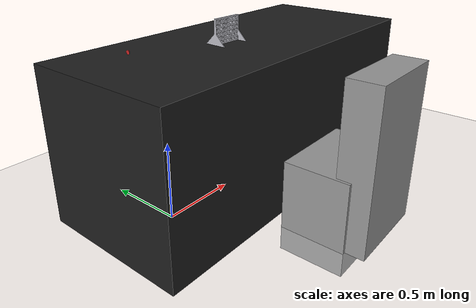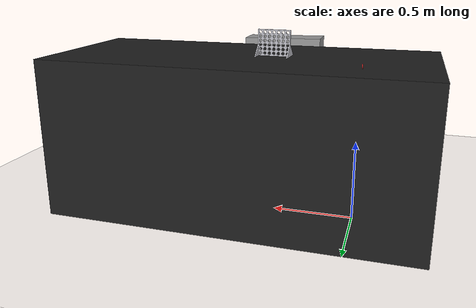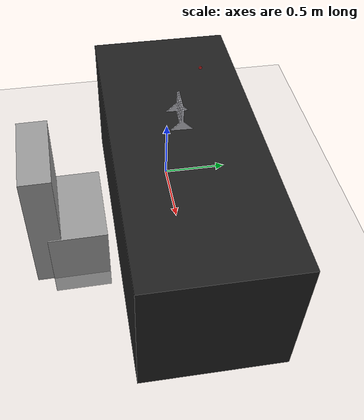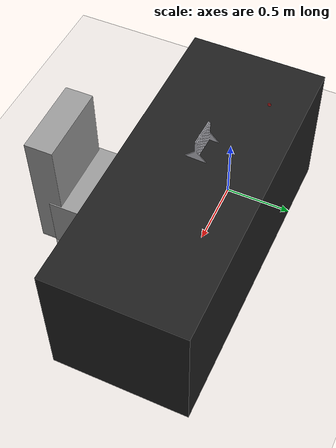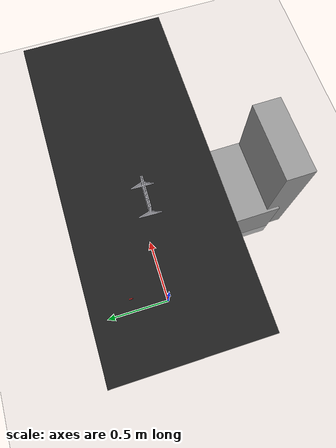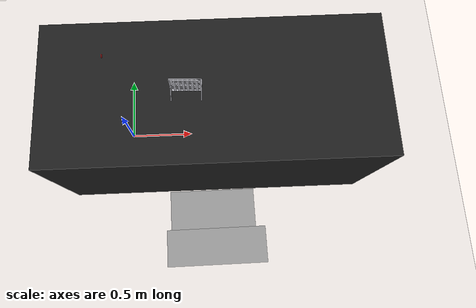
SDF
<?xml version="1.0" ?>
<sdf version="1.4">

  <world name="default">
    <include>
      <uri>model://ground_plane</uri>
    </include>

    <!-- Global light source -->
    <include>
      <uri>model://sun</uri>
    </include>

    <!-- Connect 4 -->
    <include>
      <uri>model://connect4</uri>
      <pose> 0.5 0.15 1.07 0 0 1.54</pose>
    </include>

    <!-- chips -->
    <include>
      <uri>model://chip</uri>
      <name>chip_1</name>
      <pose> -0.2 0.3 0.9 0 0 3.16</pose>
    </include>

    <!-- chair and table -->
    <include>
      <uri>model://chair_table</uri>
      <pose> 0.7 0.0 0.5 0 0 0</pose>
    </include>

    <!-- Focus camera on tall pendulum -->
    <gui fullscreen='0'>
      <camera name='user_camera'>
        <pose>4.927360 -4.376610 3.740080 0.000000 0.275643 2.356190</pose>
        <view_controller>orbit</view_controller>
      </camera>
    </gui>

  </world>
</sdf>

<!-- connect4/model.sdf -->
<sdf version='1.7'>
  <model name='connect4'>
    <static>true</static>
    <link name='base_link'>
      <inertial>
        <pose>-0.161334 -0.027247 0.000799 0 -0 0</pose>
        <mass>2.04265</mass>
        <inertia>
          <ixx>0.014489</ixx>
          <ixy>0</ixy>
          <ixz>0</ixz>
          <iyy>0.005333</iyy>
          <iyz>0</iyz>
          <izz>0.010137</izz>
        </inertia>
      </inertial>

      <collision name='base_link_collision'>
        <pose>0 0 0 0 -0 0</pose>
        <geometry>
          <mesh>
            <scale>0.001 0.001 0.001</scale>
            <uri>meshes/connect4.stl</uri>
          </mesh>
        </geometry>
        <surface>
          <contact>
            <ode/>
          </contact>
          <friction>
            <ode>
              <mu>0.2</mu>
              <mu2>0.2</mu2>
            </ode>
          </friction>
        </surface>
      </collision>

      <visual name='base_link_visual'>
        <pose>0 0 0 0 -0 0</pose>
        <geometry>
          <mesh>
            <scale>0.001 0.001 0.001</scale>
            <uri>meshes/connect4.stl</uri>
          </mesh>
        </geometry>
        <material>
          <script>
            <name>Gazebo/Silver</name>
            <uri>file://media/materials/scripts/gazebo.material</uri>
          </script>
        </material>
      </visual>
    </link>
  </model>
</sdf>

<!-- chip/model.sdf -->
<sdf version='1.7'>
  <model name='chip'>
    <static>false</static>
    <link name='base_link'>
      <inertial>
        <pose>-0.168884 0.057753 0.1127 0 0 0</pose>
        <mass>0.0178994</mass>
        <inertia>
          <ixx>1e-06</ixx>
          <ixy>0</ixy>
          <ixz>0</ixz>
          <iyy>1e-06</iyy>
          <iyz>0</iyz>
          <izz>1e-06</izz>
        </inertia>
      </inertial>

      <collision name='base_link_collision'>
        <pose>0 0 0 0 0 0</pose>
        <geometry>
          <mesh>
            <scale>0.001 0.001 0.001</scale>
            <uri>meshes/chip.stl</uri>
          </mesh>
        </geometry>
        <surface>
          <contact>
            <ode/>
          </contact>
          <friction>
            <ode>
              <mu>0.2</mu>
              <mu2>0.2</mu2>
            </ode>
          </friction>
        </surface>
      </collision>

      <visual name='base_link_visual'>
        <pose>0 0 0 0 0 0</pose>
        <geometry>
          <mesh>
            <scale>0.001 0.001 0.001</scale>
            <uri>meshes/chip.stl</uri>
          </mesh>
        </geometry>
        <material>
          <script>
            <name>Gazebo/Red</name>
            <uri>file://media/materials/scripts/gazebo.material</uri>
          </script>
        </material>
      </visual>
    </link>
  </model>
</sdf>

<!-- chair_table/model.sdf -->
<sdf version='1.7'>
  <model name='chair_table'>
    <link name='link'>
      <inertial>
        <mass>2.31605</mass>
        <inertia>
          <ixx>0.386008</ixx>
          <ixy>0</ixy>
          <ixz>0</ixz>
          <iyy>1.22828</iyy>
          <iyz>0</iyz>
          <izz>1.22828</izz>
        </inertia>
        <pose>0 0 0 0 -0 0</pose>
      </inertial>
      <self_collide>0</self_collide>
      <enable_wind>0</enable_wind>
      <kinematic>0</kinematic>
      <pose>0 0 0 0 -0 0</pose>
      <visual name='visual'>
        <geometry>
          <box>
            <size>2.31604 1 1</size>
          </box>
        </geometry>
        <material>
          <script>
            <name>Gazebo/Black</name>
            <uri>file://media/materials/scripts/gazebo.material</uri>
          </script>
          <shader type='pixel'/>
        </material>
        <pose>0 0 0 0 -0 0</pose>
        <transparency>0</transparency>
        <cast_shadows>1</cast_shadows>
      </visual>
      <collision name='collision'>
        <laser_retro>0</laser_retro>
        <max_contacts>10</max_contacts>
        <pose>0 0 0 0 -0 0</pose>
        <geometry>
          <box>
            <size>2.31604 1 1</size>
          </box>
        </geometry>
        <surface>
          <friction>
            <ode>
              <mu>1</mu>
              <mu2>1</mu2>
              <fdir1>0 0 0</fdir1>
              <slip1>0</slip1>
              <slip2>0</slip2>
            </ode>
            <torsional>
              <coefficient>1</coefficient>
              <patch_radius>0</patch_radius>
              <surface_radius>0</surface_radius>
              <use_patch_radius>1</use_patch_radius>
              <ode>
                <slip>0</slip>
              </ode>
            </torsional>
          </friction>
          <bounce>
            <restitution_coefficient>0</restitution_coefficient>
            <threshold>1e+06</threshold>
          </bounce>
          <contact>
            <collide_without_contact>0</collide_without_contact>
            <collide_without_contact_bitmask>1</collide_without_contact_bitmask>
            <collide_bitmask>1</collide_bitmask>
            <ode>
              <soft_cfm>0</soft_cfm>
              <soft_erp>0.2</soft_erp>
              <kp>1e+13</kp>
              <kd>1</kd>
              <max_vel>0.01</max_vel>
              <min_depth>0</min_depth>
            </ode>
            <bullet>
              <split_impulse>1</split_impulse>
              <split_impulse_penetration_threshold>-0.01</split_impulse_penetration_threshold>
              <soft_cfm>0</soft_cfm>
              <soft_erp>0.2</soft_erp>
              <kp>1e+13</kp>
              <kd>1</kd>
            </bullet>
          </contact>
        </surface>
      </collision>
    </link>
    <link name='link_0'>
      <inertial>
        <mass>0.148765</mass>
        <inertia>
          <ixx>0.00642282</ixx>
          <ixy>0</ixy>
          <ixz>0</ixz>
          <iyy>0.00896707</iyy>
          <iyz>0</iyz>
          <izz>0.00673768</izz>
        </inertia>
        <pose>0 0 0 0 -0 0</pose>
      </inertial>
      <pose>-0.041341 -0.781956 -0.365303 0.000137 0.014509 0.010278</pose>
      <visual name='visual'>
        <pose>0 0 0 0 -0 0</pose>
        <geometry>
          <box>
            <size>0.611849 0.411254 0.59073</size>
          </box>
        </geometry>
        <material>
          <lighting>1</lighting>
          <script>
            <uri>file://media/materials/scripts/gazebo.material</uri>
            <name>Gazebo/Grey</name>
          </script>
          <shader type='pixel'/>
        </material>
        <transparency>0</transparency>
        <cast_shadows>1</cast_shadows>
      </visual>
      <collision name='collision'>
        <laser_retro>0</laser_retro>
        <max_contacts>10</max_contacts>
        <pose>0 0 0 0 -0 0</pose>
        <geometry>
          <box>
            <size>0.611849 0.411254 0.59073</size>
          </box>
        </geometry>
        <surface>
          <friction>
            <ode>
              <mu>1</mu>
              <mu2>1</mu2>
              <fdir1>0 0 0</fdir1>
              <slip1>0</slip1>
              <slip2>0</slip2>
            </ode>
            <torsional>
              <coefficient>1</coefficient>
              <patch_radius>0</patch_radius>
              <surface_radius>0</surface_radius>
              <use_patch_radius>1</use_patch_radius>
              <ode>
                <slip>0</slip>
              </ode>
            </torsional>
          </friction>
          <bounce>
            <restitution_coefficient>0</restitution_coefficient>
            <threshold>1e+06</threshold>
          </bounce>
          <contact>
            <collide_without_contact>0</collide_without_contact>
            <collide_without_contact_bitmask>1</collide_without_contact_bitmask>
            <collide_bitmask>1</collide_bitmask>
            <ode>
              <soft_cfm>0</soft_cfm>
              <soft_erp>0.2</soft_erp>
              <kp>1e+13</kp>
              <kd>1</kd>
              <max_vel>0.01</max_vel>
              <min_depth>0</min_depth>
            </ode>
            <bullet>
              <split_impulse>1</split_impulse>
              <split_impulse_penetration_threshold>-0.01</split_impulse_penetration_threshold>
              <soft_cfm>0</soft_cfm>
              <soft_erp>0.2</soft_erp>
              <kp>1e+13</kp>
              <kd>1</kd>
            </bullet>
          </contact>
        </surface>
      </collision>
    </link>
    <link name='link_1'>
      <inertial>
        <mass>0.122493</mass>
        <inertia>
          <ixx>0.0106573</ixx>
          <ixy>0</ixy>
          <ixz>0</ixz>
          <iyy>0.0136857</iyy>
          <iyz>0</iyz>
          <izz>0.00392744</izz>
        </inertia>
        <pose>0 0 0 0 -0 0</pose>
      </inertial>
      <pose>-0.029108 -0.999749 -0.006758 0.000137 0.014509 0.010278</pose>
      <visual name='visual'>
        <pose>0 0 0 0 -0 0</pose>
        <geometry>
          <box>
            <size>0.583706 0.209852 1</size>
          </box>
        </geometry>
        <material>
          <lighting>1</lighting>
          <script>
            <uri>file://media/materials/scripts/gazebo.material</uri>
            <name>Gazebo/Grey</name>
          </script>
          <shader type='pixel'/>
        </material>
        <transparency>0</transparency>
        <cast_shadows>1</cast_shadows>
      </visual>
      <collision name='collision'>
        <laser_retro>0</laser_retro>
        <max_contacts>10</max_contacts>
        <pose>0 0 0 0 -0 0</pose>
        <geometry>
          <box>
            <size>0.583706 0.209852 1</size>
          </box>
        </geometry>
        <surface>
          <friction>
            <ode>
              <mu>1</mu>
              <mu2>1</mu2>
              <fdir1>0 0 0</fdir1>
              <slip1>0</slip1>
              <slip2>0</slip2>
            </ode>
            <torsional>
              <coefficient>1</coefficient>
              <patch_radius>0</patch_radius>
              <surface_radius>0</surface_radius>
              <use_patch_radius>1</use_patch_radius>
              <ode>
                <slip>0</slip>
              </ode>
            </torsional>
          </friction>
          <bounce>
            <restitution_coefficient>0</restitution_coefficient>
            <threshold>1e+06</threshold>
          </bounce>
          <contact>
            <collide_without_contact>0</collide_without_contact>
            <collide_without_contact_bitmask>1</collide_without_contact_bitmask>
            <collide_bitmask>1</collide_bitmask>
            <ode>
              <soft_cfm>0</soft_cfm>
              <soft_erp>0.2</soft_erp>
              <kp>1e+13</kp>
              <kd>1</kd>
              <max_vel>0.01</max_vel>
              <min_depth>0</min_depth>
            </ode>
            <bullet>
              <split_impulse>1</split_impulse>
              <split_impulse_penetration_threshold>-0.01</split_impulse_penetration_threshold>
              <soft_cfm>0</soft_cfm>
              <soft_erp>0.2</soft_erp>
              <kp>1e+13</kp>
              <kd>1</kd>
            </bullet>
          </contact>
        </surface>
      </collision>
    </link>
    <static>1</static>
    <allow_auto_disable>1</allow_auto_disable>
  </model>
</sdf>
